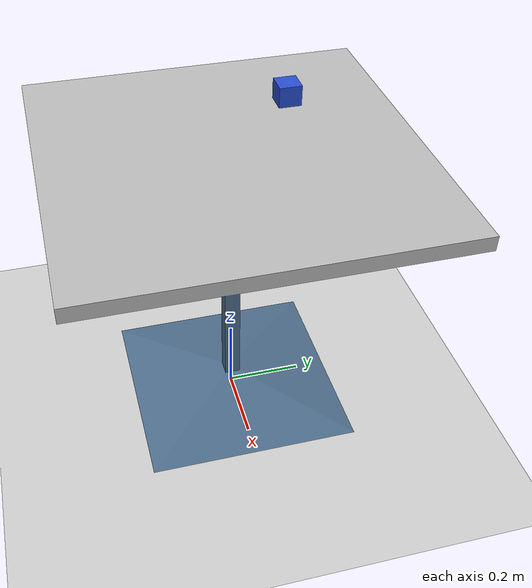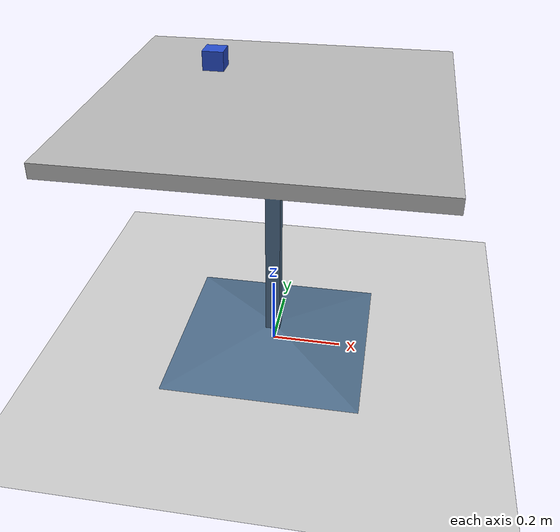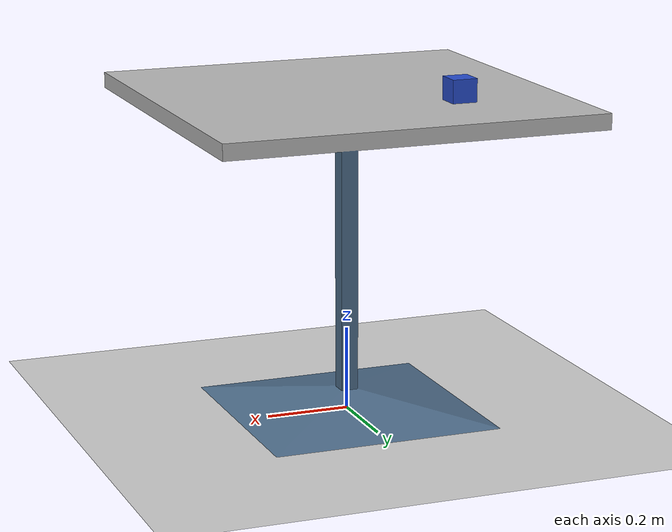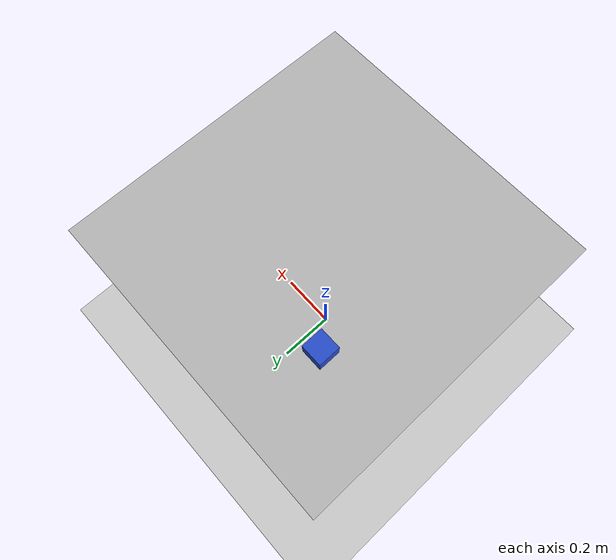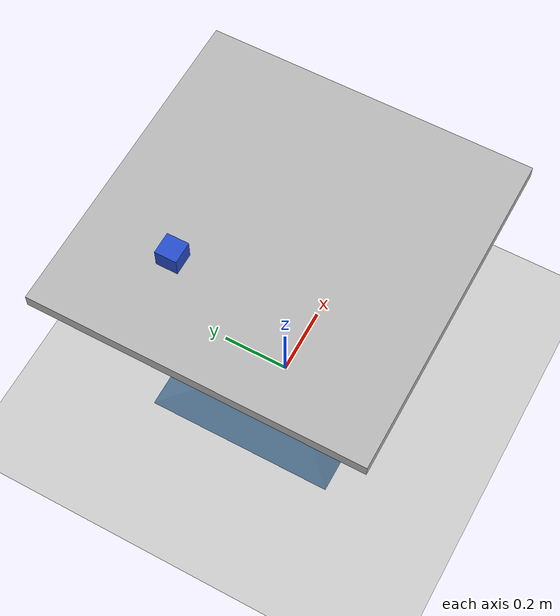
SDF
<sdf version='1.10'>
  <world name='default'>
    <physics name='1ms' type='ignored'>
      <max_step_size>0.001</max_step_size>
      <real_time_factor>1</real_time_factor>
      <real_time_update_rate>1000</real_time_update_rate>
    </physics>
    <gravity>0 0 -9.8000000000000007</gravity>
    <magnetic_field>5.5644999999999998e-06 2.2875799999999999e-05 -4.2388400000000002e-05</magnetic_field>
    <atmosphere type='adiabatic'/>
    <scene>
      <ambient>0.400000006 0.400000006 0.400000006 1</ambient>
      <background>0.699999988 0.699999988 0.699999988 1</background>
      <shadows>true</shadows>
    </scene>
    <model name='ground_plane'>
      <static>true</static>
      <link name='link'>
        <collision name='collision'>
          <geometry>
            <plane>
              <normal>0 0 1</normal>
              <size>100 100</size>
            </plane>
          </geometry>
          <surface>
            <friction>
              <ode/>
            </friction>
            <bounce/>
            <contact/>
          </surface>
        </collision>
        <visual name='visual'>
          <geometry>
            <plane>
              <normal>0 0 1</normal>
              <size>100 100</size>
            </plane>
          </geometry>
          <material>
            <ambient>0.800000012 0.800000012 0.800000012 1</ambient>
            <diffuse>0.800000012 0.800000012 0.800000012 1</diffuse>
            <specular>0.800000012 0.800000012 0.800000012 1</specular>
          </material>
        </visual>
        <pose>0 0 0 0 0 0</pose>
        <inertial>
          <pose>0 0 0 0 0 0</pose>
          <mass>1</mass>
          <inertia>
            <ixx>1</ixx>
            <ixy>0</ixy>
            <ixz>0</ixz>
            <iyy>1</iyy>
            <iyz>0</iyz>
            <izz>1</izz>
          </inertia>
        </inertial>
        <enable_wind>false</enable_wind>
      </link>
      <pose>0 0 0 0 0 0</pose>
      <self_collide>false</self_collide>
    </model>
    <include>
      <uri>model://fetch_moveit_config/models/cafe_table</uri>
      <name>cafe_table</name>
      <pose>0 0 0 0 0 0</pose>
    </include>
    <include>
      <uri>model://fetch_moveit_config/models/demo_cube</uri>
      <name>cube</name>
      <pose>-0.20000000000000001 0.20000000000000001 0.80000000000000004 0 0 0</pose>
    </include>
    <light name='sun' type='directional'>
      <pose>0 0 10 0 0 0</pose>
      <cast_shadows>true</cast_shadows>
      <intensity>1</intensity>
      <direction>-0.5 0.10000000000000001 -0.90000000000000002</direction>
      <diffuse>0.800000012 0.800000012 0.800000012 1</diffuse>
      <specular>0.200000003 0.200000003 0.200000003 1</specular>
      <attenuation>
        <range>1000</range>
        <linear>0.01</linear>
        <constant>0.90000000000000002</constant>
        <quadratic>0.001</quadratic>
      </attenuation>
      <spot>
        <inner_angle>0</inner_angle>
        <outer_angle>0</outer_angle>
        <falloff>0</falloff>
      </spot>
    </light>
  </world>
</sdf>

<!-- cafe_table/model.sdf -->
<sdf version="1.5">
  <model name="cafe_table">
    <static>true</static>
    <link name="link">
      <collision name="surface">
        <pose>0 0 0.755 0 0 0</pose>
        <geometry>
          <box>
            <size>0.913 0.913 0.04</size>
          </box>
        </geometry>
      </collision>

      <collision name="column">
        <pose>0 0 0.37 0 0 0</pose>
        <geometry>
          <box>
            <size>0.042 0.042 0.74</size>
          </box>
        </geometry>
      </collision>

      <collision name="base">
        <pose>0 0 0.02 0 0 0</pose>
        <geometry>
          <box>
            <size>0.56 0.56 0.04</size>
          </box>
        </geometry>
      </collision>

      <visual name="visual">
        <geometry>
          <mesh>
            <uri>model://fetch_moveit_config/models/cafe_table/meshes/cafe_table.dae</uri>
          </mesh>
        </geometry>
      </visual>
    </link>
  </model>
</sdf>

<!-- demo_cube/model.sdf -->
<sdf version='1.5'>
  <model name="demo_cube">

      <plugin filename="libgz-sim-pose-publisher-system.so"
              name="gz::sim::systems::PosePublisher">
        <publish_model_pose>true</publish_model_pose>
        <publish_link_pose>false</publish_link_pose>
        <publish_canonical_link_pose>false</publish_canonical_link_pose>
        <publish_nested_model_pose>true</publish_nested_model_pose>
        <use_pose_vector_msg>false</use_pose_vector_msg>
        <static_publisher>false</static_publisher>
        <update_frequency>30</update_frequency>
      </plugin>

      <static>0</static>
      <link name='link'>
        <inertial>
          <mass>0.25</mass>
          <inertia>
            <ixx>0.001</ixx>
            <ixy>0.000000</ixy>
            <ixz>0.000000</ixz>
            <iyy>0.001</iyy>
            <iyz>0.000000</iyz>
            <izz>0.001</izz>
          </inertia>
        </inertial>
        <collision name='collision'>
          <geometry>
            <box>
              <size>0.060 0.060 0.060</size>
            </box>
          </geometry>
          <surface>
            <friction>
              <ode>
                <mu>30.0</mu>
                <mu2>30.0</mu2>
              </ode>
            </friction>
            <contact>
              <ode>
                <kp>1000000.0</kp>
                <kd>100.0</kd>
                <max_vel>1.0</max_vel>
                <min_depth>0.002</min_depth>
              </ode>
            </contact>
          </surface>
        </collision>
        <visual name='visual'>
          <geometry>
            <box>
              <size>0.060 0.060 0.060</size>
            </box>
          </geometry>
          <material>
            <script>
              <uri>file://media/materials/scripts/gazebo.material</uri>
              <name>Gazebo/Blue</name>
            </script>
          </material>
        </visual>
        <velocity_decay>
          <linear>0.000000</linear>
          <angular>0.000000</angular>
        </velocity_decay>
        <self_collide>0</self_collide>
        <kinematic>0</kinematic>
        <gravity>1</gravity>
      </link>
  </model>
</sdf>
